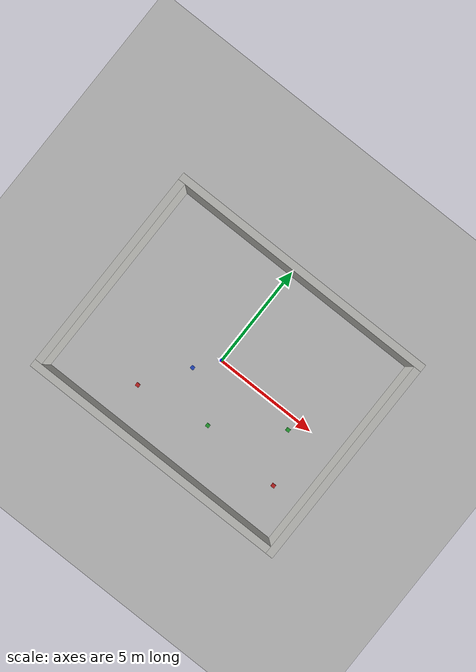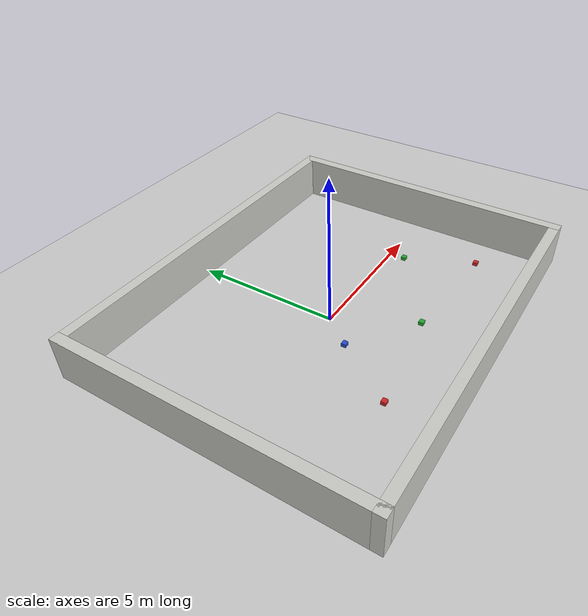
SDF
<sdf version="1.7">
 <world name="default">
  <model name="ground_plane">
   <static>1</static>
   <link name="link">
    <collision name="collision">
     <geometry><plane><normal>0 0 1</normal><size>100 100</size></plane></geometry>
     <surface><friction><ode><mu>100</mu><mu2>50</mu2></ode></friction></surface>
    </collision>
    <visual name="visual">
     <cast_shadows>0</cast_shadows>
     <geometry><plane><normal>0 0 1</normal><size>100 100</size></plane></geometry>
     <material>
      <script><uri>file://media/materials/scripts/gazebo.material</uri><name>Gazebo/Grey</name></script>
     </material>
    </visual>
   </link>
  </model>
  <model name="blue_box_clone_0">
   <link name="link">
    <inertial>
     <mass>1</mass>
     <inertia>
      <ixx>0.166667</ixx>
      <ixy>0</ixy>
      <ixz>0</ixz>
      <iyy>0.166667</iyy>
      <iyz>0</iyz>
      <izz>0.166667</izz>
     </inertia>
    </inertial>
    <visual name="visual">
     <geometry><box><size>0.177426 0.164052 0.124949</size></box></geometry>
     <material>
      <script><name>Gazebo/Blue</name><uri>file://media/materials/scripts/gazebo.material</uri></script>
      <shader type="pixel"><normal_map>__default__</normal_map></shader>
      <ambient>0 0 1 0</ambient>
      <diffuse>0 0 1 0</diffuse>
      <specular>0 0 0.1 0</specular>
      <emissive>0 0 0 1</emissive>
     </material>
    </visual>
    <collision name="collision">
     <geometry><box><size>0.177426 0.164052 0.124949</size></box></geometry>
     <surface>
      <friction>
       <ode><mu>1</mu><mu2>1</mu2><fdir1>0 0 0</fdir1><slip1>0</slip1><slip2>0</slip2></ode>
       <torsional>
        <coefficient>1</coefficient>
        <patch_radius>0</patch_radius>
        <surface_radius>0</surface_radius>
        <use_patch_radius>1</use_patch_radius>
        <ode><slip>0</slip></ode>
       </torsional>
      </friction>
      <bounce><restitution_coefficient>0</restitution_coefficient><threshold>1e+06</threshold></bounce>
      <contact>
       <collide_without_contact>0</collide_without_contact>
       <collide_without_contact_bitmask>1</collide_without_contact_bitmask>
       <collide_bitmask>1</collide_bitmask>
       <ode>
        <soft_cfm>0</soft_cfm>
        <soft_erp>0.2</soft_erp>
        <kp>1e+13</kp>
        <kd>1</kd>
        <max_vel>0.01</max_vel>
        <min_depth>0</min_depth>
       </ode>
       <bullet>
        <split_impulse>1</split_impulse>
        <split_impulse_penetration_threshold>-0.01</split_impulse_penetration_threshold>
        <soft_cfm>0</soft_cfm>
        <soft_erp>0.2</soft_erp>
        <kp>1e+13</kp>
        <kd>1</kd>
       </bullet>
      </contact>
     </surface>
    </collision>
   </link>
   <static>0</static>
   <pose>-0.800359 -1.02528 0.062474 -2e-06 -4e-06 -5e-06</pose>
  </model>
  <model name="Green_box_clone_1">
   <link name="link">
    <inertial>
     <mass>1</mass>
     <inertia>
      <ixx>0.166667</ixx>
      <ixy>0</ixy>
      <ixz>0</ixz>
      <iyy>0.166667</iyy>
      <iyz>0</iyz>
      <izz>0.166667</izz>
     </inertia>
    </inertial>
    <visual name="visual">
     <geometry><box><size>0.177426 0.164052 0.124949</size></box></geometry>
     <material>
      <script><name>Gazebo/Green</name><uri>file://media/materials/scripts/gazebo.material</uri></script>
      <shader type="pixel"><normal_map>__default__</normal_map></shader>
      <ambient>1 0 0 1</ambient>
      <diffuse>0 1 0 0</diffuse>
      <specular>0 0.1 0 0</specular>
      <emissive>0 1 0 0</emissive>
     </material>
    </visual>
    <collision name="collision">
     <geometry><box><size>0.177426 0.164052 0.124949</size></box></geometry>
     <surface>
      <friction>
       <ode><mu>1</mu><mu2>1</mu2><fdir1>0 0 0</fdir1><slip1>0</slip1><slip2>0</slip2></ode>
       <torsional>
        <coefficient>1</coefficient>
        <patch_radius>0</patch_radius>
        <surface_radius>0</surface_radius>
        <use_patch_radius>1</use_patch_radius>
        <ode><slip>0</slip></ode>
       </torsional>
      </friction>
      <bounce><restitution_coefficient>0</restitution_coefficient><threshold>1e+06</threshold></bounce>
      <contact>
       <collide_without_contact>0</collide_without_contact>
       <collide_without_contact_bitmask>1</collide_without_contact_bitmask>
       <collide_bitmask>1</collide_bitmask>
       <ode>
        <soft_cfm>0</soft_cfm>
        <soft_erp>0.2</soft_erp>
        <kp>1e+13</kp>
        <kd>1</kd>
        <max_vel>0.01</max_vel>
        <min_depth>0</min_depth>
       </ode>
       <bullet>
        <split_impulse>1</split_impulse>
        <split_impulse_penetration_threshold>-0.01</split_impulse_penetration_threshold>
        <soft_cfm>0</soft_cfm>
        <soft_erp>0.2</soft_erp>
        <kp>1e+13</kp>
        <kd>1</kd>
       </bullet>
      </contact>
     </surface>
    </collision>
   </link>
   <static>0</static>
   <pose>1.31318 -2.60108 0.062475 2e-06 -2e-06 -1.1e-05</pose>
  </model>
  <model name="unit_box_1_clone_0_clone_0">
   <link name="link">
    <inertial>
     <mass>1</mass>
     <inertia>
      <ixx>0.166667</ixx>
      <ixy>0</ixy>
      <ixz>0</ixz>
      <iyy>0.166667</iyy>
      <iyz>0</iyz>
      <izz>0.166667</izz>
     </inertia>
    </inertial>
    <visual name="visual">
     <geometry><box><size>0.177426 0.164052 0.124949</size></box></geometry>
     <material>
      <script><name>Gazebo/Red</name><uri>file://media/materials/scripts/gazebo.material</uri></script>
      <shader type="pixel"><normal_map>__default__</normal_map></shader>
      <ambient>1 0 0 1</ambient>
      <diffuse>1 0 0 1</diffuse>
      <specular>0.1 0.1 0.1 1</specular>
      <emissive>0 0 0 1</emissive>
     </material>
    </visual>
    <collision name="collision">
     <geometry><box><size>0.177426 0.164052 0.124949</size></box></geometry>
     <surface>
      <friction>
       <ode><mu>1</mu><mu2>1</mu2><fdir1>0 0 0</fdir1><slip1>0</slip1><slip2>0</slip2></ode>
       <torsional>
        <coefficient>1</coefficient>
        <patch_radius>0</patch_radius>
        <surface_radius>0</surface_radius>
        <use_patch_radius>1</use_patch_radius>
        <ode><slip>0</slip></ode>
       </torsional>
      </friction>
      <bounce><restitution_coefficient>0</restitution_coefficient><threshold>1e+06</threshold></bounce>
      <contact>
       <collide_without_contact>0</collide_without_contact>
       <collide_without_contact_bitmask>1</collide_without_contact_bitmask>
       <collide_bitmask>1</collide_bitmask>
       <ode>
        <soft_cfm>0</soft_cfm>
        <soft_erp>0.2</soft_erp>
        <kp>1e+13</kp>
        <kd>1</kd>
        <max_vel>0.01</max_vel>
        <min_depth>0</min_depth>
       </ode>
       <bullet>
        <split_impulse>1</split_impulse>
        <split_impulse_penetration_threshold>-0.01</split_impulse_penetration_threshold>
        <soft_cfm>0</soft_cfm>
        <soft_erp>0.2</soft_erp>
        <kp>1e+13</kp>
        <kd>1</kd>
       </bullet>
      </contact>
     </surface>
    </collision>
   </link>
   <static>0</static>
   <pose>-2.21933 -3.12742 0.062474 -3e-06 3e-06 -1.3e-05</pose>
  </model>
  <model name="unit_box_1_clone_1_clone">
   <link name="link">
    <inertial>
     <mass>1</mass>
     <inertia>
      <ixx>0.166667</ixx>
      <ixy>0</ixy>
      <ixz>0</ixz>
      <iyy>0.166667</iyy>
      <iyz>0</iyz>
      <izz>0.166667</izz>
     </inertia>
    </inertial>
    <visual name="visual">
     <geometry><box><size>0.177426 0.164052 0.124949</size></box></geometry>
     <material>
      <script><name>Gazebo/Red</name><uri>file://media/materials/scripts/gazebo.material</uri></script>
      <shader type="pixel"><normal_map>__default__</normal_map></shader>
      <ambient>1 0 0 1</ambient>
      <diffuse>1 0 0 1</diffuse>
      <specular>0.1 0.1 0.1 1</specular>
      <emissive>0 0 0 1</emissive>
     </material>
    </visual>
    <collision name="collision">
     <geometry><box><size>0.177426 0.164052 0.124949</size></box></geometry>
     <surface>
      <friction>
       <ode><mu>1</mu><mu2>1</mu2><fdir1>0 0 0</fdir1><slip1>0</slip1><slip2>0</slip2></ode>
       <torsional>
        <coefficient>1</coefficient>
        <patch_radius>0</patch_radius>
        <surface_radius>0</surface_radius>
        <use_patch_radius>1</use_patch_radius>
        <ode><slip>0</slip></ode>
       </torsional>
      </friction>
      <bounce><restitution_coefficient>0</restitution_coefficient><threshold>1e+06</threshold></bounce>
      <contact>
       <collide_without_contact>0</collide_without_contact>
       <collide_without_contact_bitmask>1</collide_without_contact_bitmask>
       <collide_bitmask>1</collide_bitmask>
       <ode>
        <soft_cfm>0</soft_cfm>
        <soft_erp>0.2</soft_erp>
        <kp>1e+13</kp>
        <kd>1</kd>
        <max_vel>0.01</max_vel>
        <min_depth>0</min_depth>
       </ode>
       <bullet>
        <split_impulse>1</split_impulse>
        <split_impulse_penetration_threshold>-0.01</split_impulse_penetration_threshold>
        <soft_cfm>0</soft_cfm>
        <soft_erp>0.2</soft_erp>
        <kp>1e+13</kp>
        <kd>1</kd>
       </bullet>
      </contact>
     </surface>
    </collision>
   </link>
   <static>0</static>
   <pose>5.22486 -2.88049 0.062474 3e-06 3e-06 -2.1e-05</pose>
  </model>
  <model name="Green_box_clone_2">
   <link name="link">
    <inertial>
     <mass>1</mass>
     <inertia>
      <ixx>0.166667</ixx>
      <ixy>0</ixy>
      <ixz>0</ixz>
      <iyy>0.166667</iyy>
      <iyz>0</iyz>
      <izz>0.166667</izz>
     </inertia>
    </inertial>
    <visual name="visual">
     <geometry><box><size>0.177426 0.164052 0.124949</size></box></geometry>
     <material>
      <script><name>Gazebo/Green</name><uri>file://media/materials/scripts/gazebo.material</uri></script>
      <shader type="pixel"><normal_map>__default__</normal_map></shader>
      <ambient>1 0 0 1</ambient>
      <diffuse>0 1 0 0</diffuse>
      <specular>0 0.1 0 0</specular>
      <emissive>0 1 0 0</emissive>
     </material>
    </visual>
    <collision name="collision">
     <geometry><box><size>0.177426 0.164052 0.124949</size></box></geometry>
     <surface>
      <friction>
       <ode><mu>1</mu><mu2>1</mu2><fdir1>0 0 0</fdir1><slip1>0</slip1><slip2>0</slip2></ode>
       <torsional>
        <coefficient>1</coefficient>
        <patch_radius>0</patch_radius>
        <surface_radius>0</surface_radius>
        <use_patch_radius>1</use_patch_radius>
        <ode><slip>0</slip></ode>
       </torsional>
      </friction>
      <bounce><restitution_coefficient>0</restitution_coefficient><threshold>1e+06</threshold></bounce>
      <contact>
       <collide_without_contact>0</collide_without_contact>
       <collide_without_contact_bitmask>1</collide_without_contact_bitmask>
       <collide_bitmask>1</collide_bitmask>
       <ode>
        <soft_cfm>0</soft_cfm>
        <soft_erp>0.2</soft_erp>
        <kp>1e+13</kp>
        <kd>1</kd>
        <max_vel>0.01</max_vel>
        <min_depth>0</min_depth>
       </ode>
       <bullet>
        <split_impulse>1</split_impulse>
        <split_impulse_penetration_threshold>-0.01</split_impulse_penetration_threshold>
        <soft_cfm>0</soft_cfm>
        <soft_erp>0.2</soft_erp>
        <kp>1e+13</kp>
        <kd>1</kd>
       </bullet>
      </contact>
     </surface>
    </collision>
   </link>
   <static>0</static>
   <pose>4.20037 -0.552096 0.062475 -2e-06 2e-06 -1.3e-05</pose>
  </model>
  <model name="build_1">
   <pose>0.358 0.016 0 0 -0 0</pose>
   <link name="Wall_0">
    <collision name="Wall_0_Collision">
     <geometry><box><size>13 0.35 1.5</size></box></geometry>
     <pose>0 0 0.75 0 -0 0</pose>
    </collision>
    <visual name="Wall_0_Visual">
     <pose>0 0 0.75 0 -0 0</pose>
     <geometry><box><size>13 0.35 1.5</size></box></geometry>
     <material>
      <script><uri>file://media/materials/scripts/gazebo.material</uri><name>Gazebo/CeilingTiled</name></script>
      <ambient>1 1 1 1</ambient>
     </material>
     <meta><layer>0</layer></meta>
    </visual>
    <pose>-0 5.005 0 0 -0 0</pose>
   </link>
   <link name="Wall_1">
    <collision name="Wall_1_Collision">
     <geometry><box><size>10.36 0.35 1.5</size></box></geometry>
     <pose>0 0 0.75 0 -0 0</pose>
    </collision>
    <visual name="Wall_1_Visual">
     <pose>0 0 0.75 0 -0 0</pose>
     <geometry><box><size>10.36 0.35 1.5</size></box></geometry>
     <material>
      <script><uri>file://media/materials/scripts/gazebo.material</uri><name>Gazebo/CeilingTiled</name></script>
      <ambient>1 1 1 1</ambient>
     </material>
     <meta><layer>0</layer></meta>
    </visual>
    <pose>6.325 0 0 0 -0 -1.5708</pose>
   </link>
   <link name="Wall_2">
    <collision name="Wall_2_Collision">
     <geometry><box><size>13 0.35 1.5</size></box></geometry>
     <pose>0 0 0.75 0 -0 0</pose>
    </collision>
    <visual name="Wall_2_Visual">
     <pose>0 0 0.75 0 -0 0</pose>
     <geometry><box><size>13 0.35 1.5</size></box></geometry>
     <material>
      <script><uri>file://media/materials/scripts/gazebo.material</uri><name>Gazebo/CeilingTiled</name></script>
      <ambient>1 1 1 1</ambient>
     </material>
     <meta><layer>0</layer></meta>
    </visual>
    <pose>-0 -5.005 0 0 -0 3.14159</pose>
   </link>
   <link name="Wall_3">
    <collision name="Wall_3_Collision">
     <geometry><box><size>10.3604 0.35 1.5</size></box></geometry>
     <pose>0 0 0.75 0 -0 0</pose>
    </collision>
    <visual name="Wall_3_Visual">
     <pose>0 0 0.75 0 -0 0</pose>
     <geometry><box><size>10.3604 0.35 1.5</size></box></geometry>
     <material>
      <script><uri>file://media/materials/scripts/gazebo.material</uri><name>Gazebo/CeilingTiled</name></script>
      <ambient>1 1 1 1</ambient>
     </material>
     <meta><layer>0</layer></meta>
    </visual>
    <pose>-6.325 0 0 0 -0 1.5708</pose>
   </link>
   <static>1</static>
  </model>
 </world>
</sdf>
